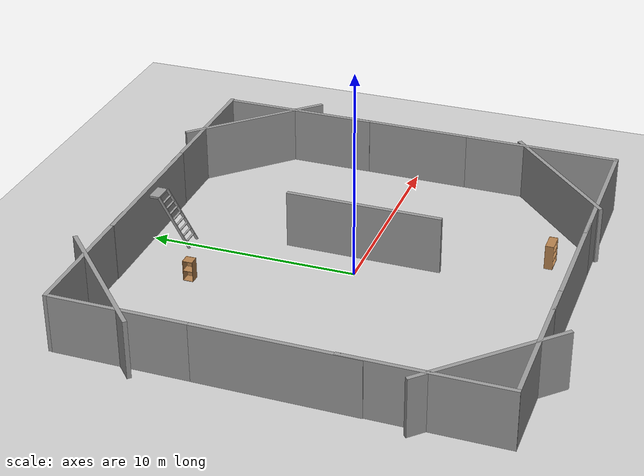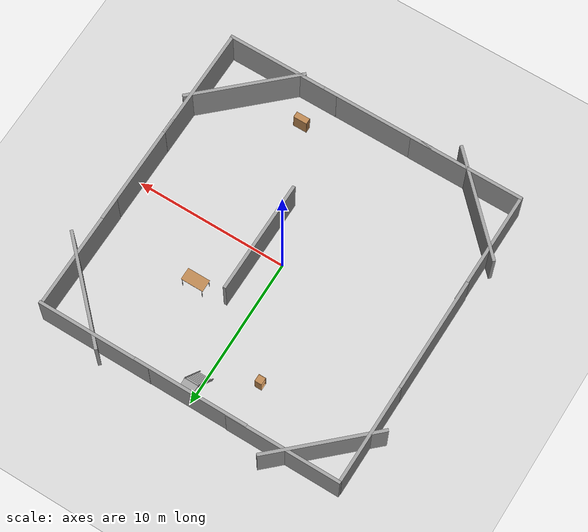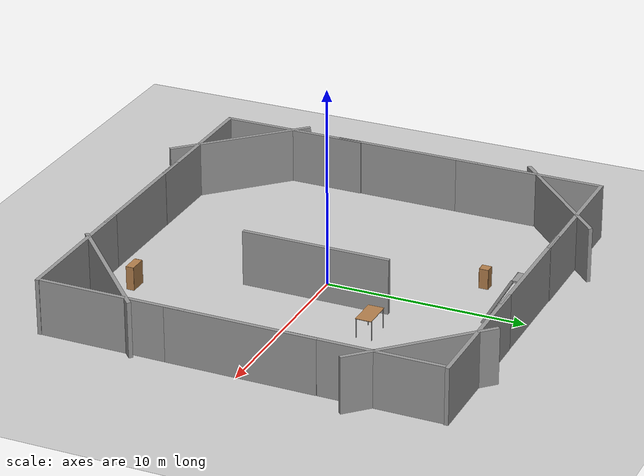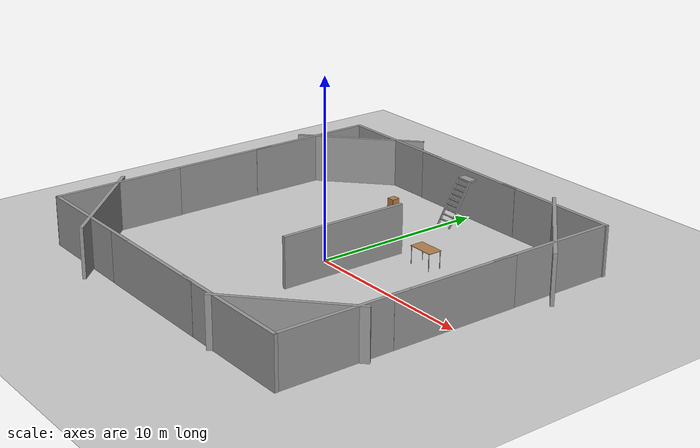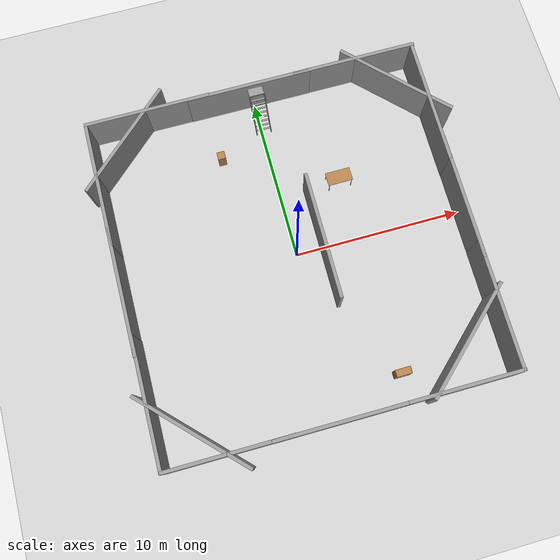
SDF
<sdf version="1.6">
 <world name="default">
  <light name="sun" type="directional">
   <pose>0 0 10 0 -0 0</pose>
   <diffuse>0.8 0.8 0.8 1</diffuse>
   <specular>0.1 0.1 0.1 1</specular>
   <attenuation>
    <range>1000</range>
    <constant>0.9</constant>
    <linear>0.01</linear>
    <quadratic>0.001</quadratic>
   </attenuation>
   <direction>-0.5 0.5 -1</direction>
  </light>
  <model name="ground_plane">
   <static>1</static>
   <link name="link">
    <collision name="collision">
     <geometry><plane><normal>0 0 1</normal><size>100 100</size></plane></geometry>
     <surface><friction><ode><mu>100</mu><mu2>50</mu2></ode></friction></surface>
    </collision>
    <visual name="visual">
     <cast_shadows>0</cast_shadows>
     <geometry><plane><normal>0 0 1</normal><size>100 100</size></plane></geometry>
     <material>
      <script><uri>file://media/materials/scripts/gazebo.material</uri><name>Gazebo/Grey</name></script>
     </material>
    </visual>
   </link>
  </model>
  <gravity>0 0 -9.8</gravity>
  <magnetic_field>6e-06 2.3e-05 -4.2e-05</magnetic_field>
  <atmosphere type="adiabatic"/>
  <physics name="default_physics" default="0" type="ode">
   <max_step_size>0.001</max_step_size>
   <real_time_factor>1</real_time_factor>
   <real_time_update_rate>1000</real_time_update_rate>
  </physics>
  <scene><ambient>0.4 0.4 0.4 1</ambient><background>0.7 0.7 0.7 1</background><shadows>1</shadows></scene>
  <spherical_coordinates>
   <surface_model>EARTH_WGS84</surface_model>
   <latitude_deg>0</latitude_deg>
   <longitude_deg>0</longitude_deg>
   <elevation>0</elevation>
   <heading_deg>0</heading_deg>
  </spherical_coordinates>
  <model name="grey_wall">
   <static>1</static>
   <link name="link">
    <pose>0 0 1.4 0 -0 0</pose>
    <collision name="collision"><geometry><box><size>7.5 0.2 2.8</size></box></geometry></collision>
    <visual name="visual">
     <cast_shadows>0</cast_shadows>
     <geometry><box><size>7.5 0.2 2.8</size></box></geometry>
     <material>
      <script>
       <uri>model://grey_wall/materials/scripts</uri>
       <uri>model://grey_wall/materials/textures</uri>
       <name>vrc/grey_wall</name>
      </script>
     </material>
    </visual>
   </link>
   <pose>-0.430951 -10.0176 0 0 -0 0</pose>
  </model>
  <model name="grey_wall_0">
   <static>1</static>
   <link name="link">
    <pose>0 0 1.4 0 -0 0</pose>
    <collision name="collision"><geometry><box><size>7.5 0.2 2.8</size></box></geometry></collision>
    <visual name="visual">
     <cast_shadows>0</cast_shadows>
     <geometry><box><size>7.5 0.2 2.8</size></box></geometry>
     <material>
      <script>
       <uri>model://grey_wall/materials/scripts</uri>
       <uri>model://grey_wall/materials/textures</uri>
       <name>vrc/grey_wall</name>
      </script>
     </material>
    </visual>
   </link>
   <pose>-6.43801 -10.0068 0 0 -0 0</pose>
  </model>
  <model name="grey_wall_1">
   <static>1</static>
   <link name="link">
    <pose>0 0 1.4 0 -0 0</pose>
    <collision name="collision"><geometry><box><size>7.5 0.2 2.8</size></box></geometry></collision>
    <visual name="visual">
     <cast_shadows>0</cast_shadows>
     <geometry><box><size>7.5 0.2 2.8</size></box></geometry>
     <material>
      <script>
       <uri>model://grey_wall/materials/scripts</uri>
       <uri>model://grey_wall/materials/textures</uri>
       <name>vrc/grey_wall</name>
      </script>
     </material>
    </visual>
   </link>
   <pose>-0.187528 10.1006 0 0 -0 0</pose>
  </model>
  <model name="grey_wall_2">
   <static>1</static>
   <link name="link">
    <pose>0 0 1.4 0 -0 0</pose>
    <collision name="collision"><geometry><box><size>7.5 0.2 2.8</size></box></geometry></collision>
    <visual name="visual">
     <cast_shadows>0</cast_shadows>
     <geometry><box><size>7.5 0.2 2.8</size></box></geometry>
     <material>
      <script>
       <uri>model://grey_wall/materials/scripts</uri>
       <uri>model://grey_wall/materials/textures</uri>
       <name>vrc/grey_wall</name>
      </script>
     </material>
    </visual>
   </link>
   <pose>-6.34448 10.1286 0 0 -0 0</pose>
  </model>
  <model name="grey_wall_3">
   <static>1</static>
   <link name="link">
    <pose>0 0 1.4 0 -0 0</pose>
    <collision name="collision"><geometry><box><size>7.5 0.2 2.8</size></box></geometry></collision>
    <visual name="visual">
     <cast_shadows>0</cast_shadows>
     <geometry><box><size>7.5 0.2 2.8</size></box></geometry>
     <material>
      <script>
       <uri>model://grey_wall/materials/scripts</uri>
       <uri>model://grey_wall/materials/textures</uri>
       <name>vrc/grey_wall</name>
      </script>
     </material>
    </visual>
   </link>
   <pose>-10.0924 -6.35537 0 0 0 -1.57741</pose>
  </model>
  <model name="grey_wall_3_clone">
   <static>1</static>
   <link name="link">
    <pose>0 0 1.4 0 -0 0</pose>
    <collision name="collision"><geometry><box><size>7.5 0.2 2.8</size></box></geometry></collision>
    <visual name="visual">
     <cast_shadows>0</cast_shadows>
     <geometry><box><size>7.5 0.2 2.8</size></box></geometry>
     <material>
      <script>
       <uri>model://grey_wall/materials/scripts</uri>
       <uri>model://grey_wall/materials/textures</uri>
       <name>vrc/grey_wall</name>
      </script>
     </material>
    </visual>
   </link>
   <pose>-10.0385 6.29221 0 0 0 -1.57741</pose>
  </model>
  <model name="grey_wall_3_clone_0">
   <static>1</static>
   <link name="link">
    <pose>0 0 1.4 0 -0 0</pose>
    <collision name="collision"><geometry><box><size>7.5 0.2 2.8</size></box></geometry></collision>
    <visual name="visual">
     <cast_shadows>0</cast_shadows>
     <geometry><box><size>7.5 0.2 2.8</size></box></geometry>
     <material>
      <script>
       <uri>model://grey_wall/materials/scripts</uri>
       <uri>model://grey_wall/materials/textures</uri>
       <name>vrc/grey_wall</name>
      </script>
     </material>
    </visual>
   </link>
   <pose>-10.0852 -0.090618 0 0 0 -1.57741</pose>
  </model>
  <model name="grey_wall_clone">
   <static>1</static>
   <link name="link">
    <pose>0 0 1.4 0 -0 0</pose>
    <collision name="collision"><geometry><box><size>7.5 0.2 2.8</size></box></geometry></collision>
    <visual name="visual">
     <cast_shadows>0</cast_shadows>
     <geometry><box><size>7.5 0.2 2.8</size></box></geometry>
     <material>
      <script>
       <uri>model://grey_wall/materials/scripts</uri>
       <uri>model://grey_wall/materials/textures</uri>
       <name>vrc/grey_wall</name>
      </script>
     </material>
    </visual>
   </link>
   <pose>6.15839 -10.0125 0 0 -0 0</pose>
  </model>
  <model name="grey_wall_3_clone_1">
   <static>1</static>
   <link name="link">
    <pose>0 0 1.4 0 -0 0</pose>
    <collision name="collision"><geometry><box><size>7.5 0.2 2.8</size></box></geometry></collision>
    <visual name="visual">
     <cast_shadows>0</cast_shadows>
     <geometry><box><size>7.5 0.2 2.8</size></box></geometry>
     <material>
      <script>
       <uri>model://grey_wall/materials/scripts</uri>
       <uri>model://grey_wall/materials/textures</uri>
       <name>vrc/grey_wall</name>
      </script>
     </material>
    </visual>
   </link>
   <pose>9.81082 -6.30361 0 0 0 -1.57741</pose>
  </model>
  <model name="grey_wall_3_clone_2">
   <static>1</static>
   <link name="link">
    <pose>0 0 1.4 0 -0 0</pose>
    <collision name="collision"><geometry><box><size>7.5 0.2 2.8</size></box></geometry></collision>
    <visual name="visual">
     <cast_shadows>0</cast_shadows>
     <geometry><box><size>7.5 0.2 2.8</size></box></geometry>
     <material>
      <script>
       <uri>model://grey_wall/materials/scripts</uri>
       <uri>model://grey_wall/materials/textures</uri>
       <name>vrc/grey_wall</name>
      </script>
     </material>
    </visual>
   </link>
   <pose>9.85875 0.188279 0 0 0 -1.57741</pose>
  </model>
  <model name="grey_wall_3_clone_3">
   <static>1</static>
   <link name="link">
    <pose>0 0 1.4 0 -0 0</pose>
    <collision name="collision"><geometry><box><size>7.5 0.2 2.8</size></box></geometry></collision>
    <visual name="visual">
     <cast_shadows>0</cast_shadows>
     <geometry><box><size>7.5 0.2 2.8</size></box></geometry>
     <material>
      <script>
       <uri>model://grey_wall/materials/scripts</uri>
       <uri>model://grey_wall/materials/textures</uri>
       <name>vrc/grey_wall</name>
      </script>
     </material>
    </visual>
   </link>
   <pose>9.88561 6.25818 0 0 0 -1.57741</pose>
  </model>
  <model name="grey_wall_1_clone">
   <static>1</static>
   <link name="link">
    <pose>0 0 1.4 0 -0 0</pose>
    <collision name="collision"><geometry><box><size>7.5 0.2 2.8</size></box></geometry></collision>
    <visual name="visual">
     <cast_shadows>0</cast_shadows>
     <geometry><box><size>7.5 0.2 2.8</size></box></geometry>
     <material>
      <script>
       <uri>model://grey_wall/materials/scripts</uri>
       <uri>model://grey_wall/materials/textures</uri>
       <name>vrc/grey_wall</name>
      </script>
     </material>
    </visual>
   </link>
   <pose>6.32176 10.1148 0 0 -0 0</pose>
  </model>
  <model name="grey_wall_3_clone_0_clone">
   <static>1</static>
   <link name="link">
    <pose>0 0 1.4 0 -0 0</pose>
    <collision name="collision"><geometry><box><size>7.5 0.2 2.8</size></box></geometry></collision>
    <visual name="visual">
     <cast_shadows>0</cast_shadows>
     <geometry><box><size>7.5 0.2 2.8</size></box></geometry>
     <material>
      <script>
       <uri>model://grey_wall/materials/scripts</uri>
       <uri>model://grey_wall/materials/textures</uri>
       <name>vrc/grey_wall</name>
      </script>
     </material>
    </visual>
   </link>
   <pose>1.52165 0.080496 0 0 0 -1.57741</pose>
  </model>
  <model name="cabinet">
   <static>1</static>
   <link name="cabinet_bottom_plate">
    <inertial>
     <pose>0 0 -1 0 -0 0</pose>
     <inertia><ixx>2.05</ixx><ixy>0</ixy><ixz>0</ixz><iyy>2.05</iyy><iyz>0</iyz><izz>2.05</izz></inertia>
     <mass>25</mass>
    </inertial>
    <collision name="cabinet_bottom_plate_geom">
     <pose>0 0 0.01 0 -0 0</pose>
     <geometry><box><size>0.45 0.45 0.02</size></box></geometry>
    </collision>
    <visual name="cabinet_bottom_plate_geom_visual">
     <pose>0 0 0.01 0 -0 0</pose>
     <geometry><box><size>0.45 0.45 0.02</size></box></geometry>
     <material>
      <script><uri>file://media/materials/scripts/gazebo.material</uri><name>Gazebo/Wood</name></script>
     </material>
    </visual>
    <collision name="cabinet_bottom_plate_geom_cabinet_back_plate">
     <pose>0.235 0 0.51 0 -0 0</pose>
     <geometry><box><size>0.02 0.45 1.02</size></box></geometry>
    </collision>
    <visual name="cabinet_bottom_plate_geom_cabinet_back_plate_visual">
     <pose>0.235 0 0.51 0 -0 0</pose>
     <geometry><box><size>0.02 0.45 1.02</size></box></geometry>
     <material>
      <script><uri>file://media/materials/scripts/gazebo.material</uri><name>Gazebo/Wood</name></script>
     </material>
    </visual>
    <collision name="cabinet_bottom_plate_geom_cabinet_left_plate">
     <pose>0 0.235 0.51 0 -0 0</pose>
     <geometry><box><size>0.45 0.02 1.02</size></box></geometry>
    </collision>
    <visual name="cabinet_bottom_plate_geom_cabinet_left_plate_visual">
     <pose>0 0.235 0.51 0 -0 0</pose>
     <geometry><box><size>0.45 0.02 1.02</size></box></geometry>
     <material>
      <script><uri>file://media/materials/scripts/gazebo.material</uri><name>Gazebo/Wood</name></script>
     </material>
    </visual>
    <collision name="cabinet_bottom_plate_geom_cabinet_middle_plate">
     <pose>0 0 0.51 0 -0 0</pose>
     <geometry><box><size>0.45 0.45 0.02</size></box></geometry>
    </collision>
    <visual name="cabinet_bottom_plate_geom_cabinet_middle_plate_visual">
     <pose>0 0 0.51 0 -0 0</pose>
     <geometry><box><size>0.45 0.45 0.02</size></box></geometry>
     <material>
      <script><uri>file://media/materials/scripts/gazebo.material</uri><name>Gazebo/Wood</name></script>
     </material>
    </visual>
    <collision name="cabinet_bottom_plate_geom_cabinet_right_plate">
     <pose>0 -0.235 0.51 0 -0 0</pose>
     <geometry><box><size>0.45 0.02 1.02</size></box></geometry>
    </collision>
    <visual name="cabinet_bottom_plate_geom_cabinet_right_plate_visual">
     <pose>0 -0.235 0.51 0 -0 0</pose>
     <geometry><box><size>0.45 0.02 1.02</size></box></geometry>
     <material>
      <script><uri>file://media/materials/scripts/gazebo.material</uri><name>Gazebo/Wood</name></script>
     </material>
    </visual>
    <collision name="cabinet_bottom_plate_geom_cabinet_top_plate">
     <pose>0 0 1.01 0 -0 0</pose>
     <geometry><box><size>0.45 0.45 0.02</size></box></geometry>
    </collision>
    <visual name="cabinet_bottom_plate_geom_cabinet_top_plate_visual">
     <pose>0 0 1.01 0 -0 0</pose>
     <geometry><box><size>0.45 0.45 0.02</size></box></geometry>
     <material>
      <script><uri>file://media/materials/scripts/gazebo.material</uri><name>Gazebo/Wood</name></script>
     </material>
    </visual>
   </link>
   <pose>-2.82615 6.92849 0 0 -0 0</pose>
  </model>
  <model name="bookshelf">
   <static>1</static>
   <link name="link">
    <inertial><mass>1</mass></inertial>
    <collision name="back">
     <pose>0 0.005 0.6 0 -0 0</pose>
     <geometry><box><size>0.9 0.01 1.2</size></box></geometry>
    </collision>
    <visual name="visual1">
     <pose>0 0.005 0.6 0 -0 0</pose>
     <geometry><box><size>0.9 0.01 1.2</size></box></geometry>
     <material>
      <script><uri>file://media/materials/scripts/gazebo.material</uri><name>Gazebo/Wood</name></script>
     </material>
    </visual>
    <collision name="left_side">
     <pose>0.45 -0.195 0.6 0 -0 0</pose>
     <geometry><box><size>0.02 0.4 1.2</size></box></geometry>
    </collision>
    <visual name="visual2">
     <pose>0.45 -0.195 0.6 0 -0 0</pose>
     <geometry><box><size>0.02 0.4 1.2</size></box></geometry>
     <material>
      <script><uri>file://media/materials/scripts/gazebo.material</uri><name>Gazebo/Wood</name></script>
     </material>
    </visual>
    <collision name="right_side">
     <pose>-0.45 -0.195 0.6 0 -0 0</pose>
     <geometry><box><size>0.02 0.4 1.2</size></box></geometry>
    </collision>
    <visual name="visual3">
     <pose>-0.45 -0.195 0.6 0 -0 0</pose>
     <geometry><box><size>0.02 0.4 1.2</size></box></geometry>
     <material>
      <script><uri>file://media/materials/scripts/gazebo.material</uri><name>Gazebo/Wood</name></script>
     </material>
    </visual>
    <collision name="bottom">
     <pose>0 -0.195 0.03 0 -0 0</pose>
     <geometry><box><size>0.88 0.4 0.06</size></box></geometry>
    </collision>
    <visual name="visual4">
     <pose>0 -0.195 0.03 0 -0 0</pose>
     <geometry><box><size>0.88 0.4 0.06</size></box></geometry>
     <material>
      <script><uri>file://media/materials/scripts/gazebo.material</uri><name>Gazebo/Wood</name></script>
     </material>
    </visual>
    <collision name="top">
     <pose>0 -0.195 1.19 0 -0 0</pose>
     <geometry><box><size>0.88 0.4 0.02</size></box></geometry>
    </collision>
    <visual name="visual5">
     <pose>0 -0.195 1.19 0 -0 0</pose>
     <geometry><box><size>0.88 0.4 0.02</size></box></geometry>
     <material>
      <script><uri>file://media/materials/scripts/gazebo.material</uri><name>Gazebo/Wood</name></script>
     </material>
    </visual>
    <collision name="low_shelf">
     <pose>0 -0.195 0.43 0 -0 0</pose>
     <geometry><box><size>0.88 0.4 0.02</size></box></geometry>
    </collision>
    <visual name="visual6">
     <pose>0 -0.195 0.43 0 -0 0</pose>
     <geometry><box><size>0.88 0.4 0.02</size></box></geometry>
     <material>
      <script><uri>file://media/materials/scripts/gazebo.material</uri><name>Gazebo/Wood</name></script>
     </material>
    </visual>
    <collision name="high_shelf">
     <pose>0 -0.195 0.8 0 -0 0</pose>
     <geometry><box><size>0.88 0.4 0.02</size></box></geometry>
    </collision>
    <visual name="visual7">
     <pose>0 -0.195 0.8 0 -0 0</pose>
     <geometry><box><size>0.88 0.4 0.02</size></box></geometry>
     <material>
      <script><uri>file://media/materials/scripts/gazebo.material</uri><name>Gazebo/Wood</name></script>
     </material>
    </visual>
   </link>
   <pose>3.81369 -8.10094 0 0 -0 0</pose>
  </model>
  <model name="table">
   <static>1</static>
   <link name="link">
    <collision name="surface">
     <pose>0 0 1 0 -0 0</pose>
     <geometry><box><size>1.5 0.8 0.03</size></box></geometry>
     <surface><friction><ode><mu>0.6</mu><mu2>0.6</mu2></ode></friction></surface>
    </collision>
    <visual name="visual1">
     <pose>0 0 1 0 -0 0</pose>
     <geometry><box><size>1.5 0.8 0.03</size></box></geometry>
     <material>
      <script><uri>file://media/materials/scripts/gazebo.material</uri><name>Gazebo/Wood</name></script>
     </material>
    </visual>
    <collision name="front_left_leg">
     <pose>0.68 0.38 0.5 0 -0 0</pose>
     <geometry><cylinder><radius>0.02</radius><length>1</length></cylinder></geometry>
    </collision>
    <visual name="front_left_leg">
     <pose>0.68 0.38 0.5 0 -0 0</pose>
     <geometry><cylinder><radius>0.02</radius><length>1</length></cylinder></geometry>
     <material>
      <script><uri>file://media/materials/scripts/gazebo.material</uri><name>Gazebo/Grey</name></script>
     </material>
    </visual>
    <collision name="front_right_leg">
     <pose>0.68 -0.38 0.5 0 -0 0</pose>
     <geometry><cylinder><radius>0.02</radius><length>1</length></cylinder></geometry>
    </collision>
    <visual name="front_right_leg">
     <pose>0.68 -0.38 0.5 0 -0 0</pose>
     <geometry><cylinder><radius>0.02</radius><length>1</length></cylinder></geometry>
     <material>
      <script><uri>file://media/materials/scripts/gazebo.material</uri><name>Gazebo/Grey</name></script>
     </material>
    </visual>
    <collision name="back_right_leg">
     <pose>-0.68 -0.38 0.5 0 -0 0</pose>
     <geometry><cylinder><radius>0.02</radius><length>1</length></cylinder></geometry>
    </collision>
    <visual name="back_right_leg">
     <pose>-0.68 -0.38 0.5 0 -0 0</pose>
     <geometry><cylinder><radius>0.02</radius><length>1</length></cylinder></geometry>
     <material>
      <script><uri>file://media/materials/scripts/gazebo.material</uri><name>Gazebo/Grey</name></script>
     </material>
    </visual>
    <collision name="back_left_leg">
     <pose>-0.68 0.38 0.5 0 -0 0</pose>
     <geometry><cylinder><radius>0.02</radius><length>1</length></cylinder></geometry>
    </collision>
    <visual name="back_left_leg">
     <pose>-0.68 0.38 0.5 0 -0 0</pose>
     <geometry><cylinder><radius>0.02</radius><length>1</length></cylinder></geometry>
     <material>
      <script><uri>file://media/materials/scripts/gazebo.material</uri><name>Gazebo/Grey</name></script>
     </material>
    </visual>
   </link>
   <pose>3.63178 3.75743 0 0 -0 0</pose>
  </model>
  <model name="ladder_60deg_0rails">
   <static>1</static>
   <link name="step0">
    <pose>0 0.15396 0.266667 0 -0 0</pose>
    <inertial>
     <mass>9.75482</mass>
     <inertia>
      <ixx>0.00957124</ixx>
      <iyy>0.65963</iyy>
      <izz>0.666842</izz>
      <ixy>0</ixy>
      <ixz>0</ixz>
      <iyz>0</iyz>
     </inertia>
    </inertial>
    <collision name="collision"><geometry><box><size>0.9 0.1016 0.0381</size></box></geometry></collision>
    <visual name="visual">
     <geometry><box><size>0.9 0.1016 0.0381</size></box></geometry>
     <material>
      <script><uri>file://media/materials/scripts/gazebo.material</uri><name>Gazebo/Grey</name></script>
     </material>
    </visual>
   </link>
   <link name="step1">
    <pose>0 0.30792 0.533333 0 -0 0</pose>
    <inertial>
     <mass>9.75482</mass>
     <inertia>
      <ixx>0.00957124</ixx>
      <iyy>0.65963</iyy>
      <izz>0.666842</izz>
      <ixy>0</ixy>
      <ixz>0</ixz>
      <iyz>0</iyz>
     </inertia>
    </inertial>
    <collision name="collision"><geometry><box><size>0.9 0.1016 0.0381</size></box></geometry></collision>
    <visual name="visual">
     <geometry><box><size>0.9 0.1016 0.0381</size></box></geometry>
     <material>
      <script><uri>file://media/materials/scripts/gazebo.material</uri><name>Gazebo/Grey</name></script>
     </material>
    </visual>
   </link>
   <link name="step2">
    <pose>0 0.46188 0.8 0 -0 0</pose>
    <inertial>
     <mass>9.75482</mass>
     <inertia>
      <ixx>0.00957124</ixx>
      <iyy>0.65963</iyy>
      <izz>0.666842</izz>
      <ixy>0</ixy>
      <ixz>0</ixz>
      <iyz>0</iyz>
     </inertia>
    </inertial>
    <collision name="collision"><geometry><box><size>0.9 0.1016 0.0381</size></box></geometry></collision>
    <visual name="visual">
     <geometry><box><size>0.9 0.1016 0.0381</size></box></geometry>
     <material>
      <script><uri>file://media/materials/scripts/gazebo.material</uri><name>Gazebo/Grey</name></script>
     </material>
    </visual>
   </link>
   <link name="step3">
    <pose>0 0.61584 1.06667 0 -0 0</pose>
    <inertial>
     <mass>9.75482</mass>
     <inertia>
      <ixx>0.00957124</ixx>
      <iyy>0.65963</iyy>
      <izz>0.666842</izz>
      <ixy>0</ixy>
      <ixz>0</ixz>
      <iyz>0</iyz>
     </inertia>
    </inertial>
    <collision name="collision"><geometry><box><size>0.9 0.1016 0.0381</size></box></geometry></collision>
    <visual name="visual">
     <geometry><box><size>0.9 0.1016 0.0381</size></box></geometry>
     <material>
      <script><uri>file://media/materials/scripts/gazebo.material</uri><name>Gazebo/Grey</name></script>
     </material>
    </visual>
   </link>
   <link name="step4">
    <pose>0 0.7698 1.33333 0 -0 0</pose>
    <inertial>
     <mass>9.75482</mass>
     <inertia>
      <ixx>0.00957124</ixx>
      <iyy>0.65963</iyy>
      <izz>0.666842</izz>
      <ixy>0</ixy>
      <ixz>0</ixz>
      <iyz>0</iyz>
     </inertia>
    </inertial>
    <collision name="collision"><geometry><box><size>0.9 0.1016 0.0381</size></box></geometry></collision>
    <visual name="visual">
     <geometry><box><size>0.9 0.1016 0.0381</size></box></geometry>
     <material>
      <script><uri>file://media/materials/scripts/gazebo.material</uri><name>Gazebo/Grey</name></script>
     </material>
    </visual>
   </link>
   <link name="step5">
    <pose>0 0.92376 1.6 0 -0 0</pose>
    <inertial>
     <mass>9.75482</mass>
     <inertia>
      <ixx>0.00957124</ixx>
      <iyy>0.65963</iyy>
      <izz>0.666842</izz>
      <ixy>0</ixy>
      <ixz>0</ixz>
      <iyz>0</iyz>
     </inertia>
    </inertial>
    <collision name="collision"><geometry><box><size>0.9 0.1016 0.0381</size></box></geometry></collision>
    <visual name="visual">
     <geometry><box><size>0.9 0.1016 0.0381</size></box></geometry>
     <material>
      <script><uri>file://media/materials/scripts/gazebo.material</uri><name>Gazebo/Grey</name></script>
     </material>
    </visual>
   </link>
   <link name="step6">
    <pose>0 1.07772 1.86667 0 -0 0</pose>
    <inertial>
     <mass>9.75482</mass>
     <inertia>
      <ixx>0.00957124</ixx>
      <iyy>0.65963</iyy>
      <izz>0.666842</izz>
      <ixy>0</ixy>
      <ixz>0</ixz>
      <iyz>0</iyz>
     </inertia>
    </inertial>
    <collision name="collision"><geometry><box><size>0.9 0.1016 0.0381</size></box></geometry></collision>
    <visual name="visual">
     <geometry><box><size>0.9 0.1016 0.0381</size></box></geometry>
     <material>
      <script><uri>file://media/materials/scripts/gazebo.material</uri><name>Gazebo/Grey</name></script>
     </material>
    </visual>
   </link>
   <link name="step7">
    <pose>0 1.23168 2.13333 0 -0 0</pose>
    <inertial>
     <mass>9.75482</mass>
     <inertia>
      <ixx>0.00957124</ixx>
      <iyy>0.65963</iyy>
      <izz>0.666842</izz>
      <ixy>0</ixy>
      <ixz>0</ixz>
      <iyz>0</iyz>
     </inertia>
    </inertial>
    <collision name="collision"><geometry><box><size>0.9 0.1016 0.0381</size></box></geometry></collision>
    <visual name="visual">
     <geometry><box><size>0.9 0.1016 0.0381</size></box></geometry>
     <material>
      <script><uri>file://media/materials/scripts/gazebo.material</uri><name>Gazebo/Grey</name></script>
     </material>
    </visual>
   </link>
   <link name="landing">
    <pose>0 1.68564 2.4 0 -0 0</pose>
    <inertial>
     <mass>57.6072</mass>
     <inertia><ixx>1.73518</ixx><iyy>3.89545</iyy><izz>5.6167</izz><ixy>0</ixy><ixz>0</ixz><iyz>0</iyz></inertia>
    </inertial>
    <collision name="collision"><geometry><box><size>0.9 0.6 0.1016</size></box></geometry></collision>
    <visual name="visual">
     <geometry><box><size>0.9 0.6 0.1016</size></box></geometry>
     <material>
      <script><uri>file://media/materials/scripts/gazebo.material</uri><name>Gazebo/Grey</name></script>
     </material>
    </visual>
   </link>
   <link name="left_side_wall">
    <pose>-0.45 0.69282 1.2 1.0472 -0 0</pose>
    <collision name="collision"><geometry><box><size>0.0508 2.85128 0.13</size></box></geometry></collision>
    <visual name="visual">
     <geometry><box><size>0.0508 2.85128 0.13</size></box></geometry>
     <material>
      <script><uri>file://media/materials/scripts/gazebo.material</uri><name>Gazebo/Grey</name></script>
     </material>
    </visual>
   </link>
   <link name="right_side_wall">
    <pose>0.45 0.69282 1.2 1.0472 -0 0</pose>
    <collision name="collision"><geometry><box><size>0.0508 2.85128 0.13</size></box></geometry></collision>
    <visual name="visual">
     <geometry><box><size>0.0508 2.85128 0.13</size></box></geometry>
     <material>
      <script><uri>file://media/materials/scripts/gazebo.material</uri><name>Gazebo/Grey</name></script>
     </material>
    </visual>
   </link>
   <pose>0.141363 8.11051 0 0 -0 0</pose>
  </model>
  <model name="grey_wall_4">
   <static>1</static>
   <link name="link">
    <pose>0 0 1.4 0 -0 0</pose>
    <collision name="collision"><geometry><box><size>7.5 0.2 2.8</size></box></geometry></collision>
    <visual name="visual">
     <cast_shadows>0</cast_shadows>
     <geometry><box><size>7.5 0.2 2.8</size></box></geometry>
     <material>
      <script>
       <uri>model://grey_wall/materials/scripts</uri>
       <uri>model://grey_wall/materials/textures</uri>
       <name>vrc/grey_wall</name>
      </script>
     </material>
    </visual>
   </link>
   <pose>-8.11326 -8.42868 0 0 0 -0.789957</pose>
  </model>
  <model name="grey_wall_4_clone">
   <static>1</static>
   <link name="link">
    <pose>0 0 1.4 0 -0 0</pose>
    <collision name="collision"><geometry><box><size>7.5 0.2 2.8</size></box></geometry></collision>
    <visual name="visual">
     <cast_shadows>0</cast_shadows>
     <geometry><box><size>7.5 0.2 2.8</size></box></geometry>
     <material>
      <script>
       <uri>model://grey_wall/materials/scripts</uri>
       <uri>model://grey_wall/materials/textures</uri>
       <name>vrc/grey_wall</name>
      </script>
     </material>
    </visual>
   </link>
   <pose>8.33696 8.15843 0 0 0 -0.789957</pose>
  </model>
  <model name="grey_wall_4_clone_0">
   <static>1</static>
   <link name="link">
    <pose>0 0 1.4 0 -0 0</pose>
    <collision name="collision"><geometry><box><size>7.5 0.2 2.8</size></box></geometry></collision>
    <visual name="visual">
     <cast_shadows>0</cast_shadows>
     <geometry><box><size>7.5 0.2 2.8</size></box></geometry>
     <material>
      <script>
       <uri>model://grey_wall/materials/scripts</uri>
       <uri>model://grey_wall/materials/textures</uri>
       <name>vrc/grey_wall</name>
      </script>
     </material>
    </visual>
   </link>
   <pose>-8.04015 8.67456 0 0 -0 0.75064</pose>
  </model>
  <model name="grey_wall_4_clone_0_clone">
   <static>1</static>
   <link name="link">
    <pose>0 0 1.4 0 -0 0</pose>
    <collision name="collision"><geometry><box><size>7.5 0.2 2.8</size></box></geometry></collision>
    <visual name="visual">
     <cast_shadows>0</cast_shadows>
     <geometry><box><size>7.5 0.2 2.8</size></box></geometry>
     <material>
      <script>
       <uri>model://grey_wall/materials/scripts</uri>
       <uri>model://grey_wall/materials/textures</uri>
       <name>vrc/grey_wall</name>
      </script>
     </material>
    </visual>
   </link>
   <pose>7.46652 -7.69847 0 0 -0 0.75064</pose>
  </model>
 </world>
</sdf>
